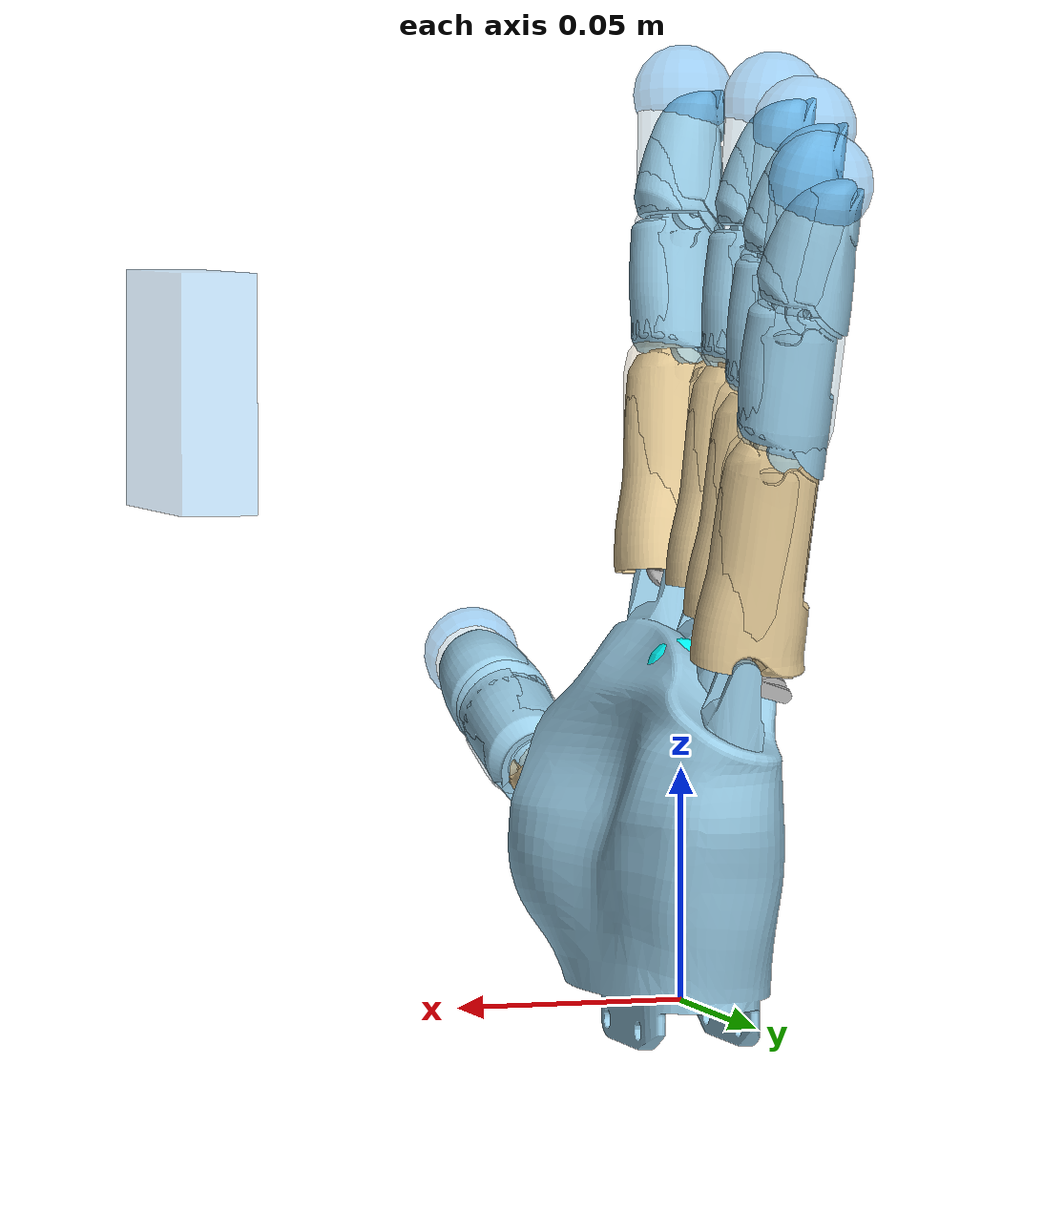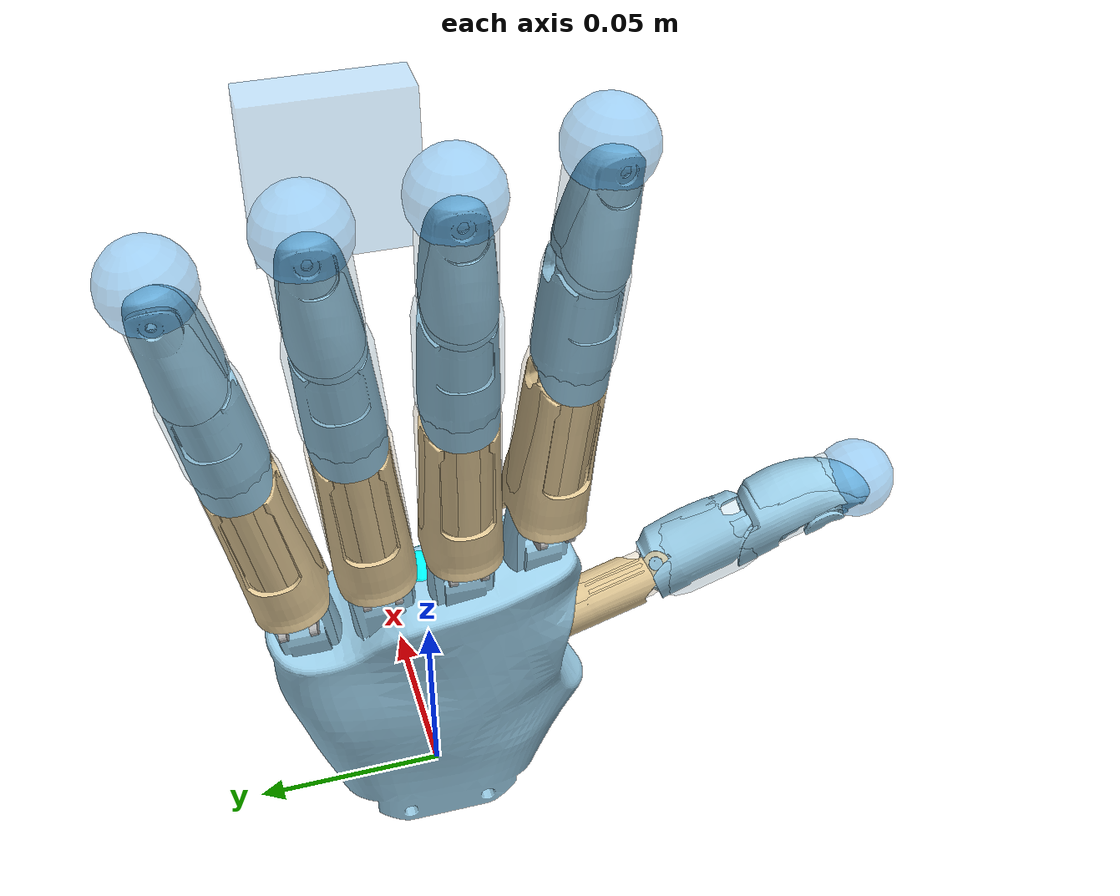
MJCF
<mujoco model="wujihand-left">
  <compiler angle="radian" meshdir="meshes/left/" />

  <default><joint armature="0.0002" damping="0.0" /></default><asset>
    <mesh name="left_palm_link" content_type="model/stl" file="left_palm_link.STL" />
    <mesh name="left_finger1_link1" content_type="model/stl" file="left_finger1_link1.STL" />
    <mesh name="left_finger1_link2" content_type="model/stl" file="left_finger1_link2.STL" />
    <mesh name="left_finger1_link3" content_type="model/stl" file="left_finger1_link3.STL" />
    <mesh name="left_finger1_link4" content_type="model/stl" file="left_finger1_link4.STL" />
    <mesh name="left_finger1_tip_link" content_type="model/stl" file="left_finger1_tip_link.STL" />
    <mesh name="left_finger2_link1" content_type="model/stl" file="left_finger2_link1.STL" />
    <mesh name="left_finger2_link2" content_type="model/stl" file="left_finger2_link2.STL" />
    <mesh name="left_finger2_link3" content_type="model/stl" file="left_finger2_link3.STL" />
    <mesh name="left_finger2_link4" content_type="model/stl" file="left_finger2_link4.STL" />
    <mesh name="left_finger2_tip_link" content_type="model/stl" file="left_finger2_tip_link.STL" />
    <mesh name="left_finger3_link1" content_type="model/stl" file="left_finger3_link1.STL" />
    <mesh name="left_finger3_link2" content_type="model/stl" file="left_finger3_link2.STL" />
    <mesh name="left_finger3_link3" content_type="model/stl" file="left_finger3_link3.STL" />
    <mesh name="left_finger3_link4" content_type="model/stl" file="left_finger3_link4.STL" />
    <mesh name="left_finger3_tip_link" content_type="model/stl" file="left_finger3_tip_link.STL" />
    <mesh name="left_finger4_link1" content_type="model/stl" file="left_finger4_link1.STL" />
    <mesh name="left_finger4_link2" content_type="model/stl" file="left_finger4_link2.STL" />
    <mesh name="left_finger4_link3" content_type="model/stl" file="left_finger4_link3.STL" />
    <mesh name="left_finger4_link4" content_type="model/stl" file="left_finger4_link4.STL" />
    <mesh name="left_finger4_tip_link" content_type="model/stl" file="left_finger4_tip_link.STL" />
    <mesh name="left_finger5_link1" content_type="model/stl" file="left_finger5_link1.STL" />
    <mesh name="left_finger5_link2" content_type="model/stl" file="left_finger5_link2.STL" />
    <mesh name="left_finger5_link3" content_type="model/stl" file="left_finger5_link3.STL" />
    <mesh name="left_finger5_link4" content_type="model/stl" file="left_finger5_link4.STL" />
    <mesh name="left_finger5_tip_link" content_type="model/stl" file="left_finger5_tip_link.STL" />
  </asset>

  <worldbody>
    <body name="left_palm_link"><inertial pos="-0.002979471431 -0.0004557176227 0.03665408641" mass="0.16914" quat="-0.01772809 0.04274722 0.09308295 -0.99458230" diaginertia="0.000140677446 9.5889647500e-05 5.8132906100e-05" /><geom type="mesh" contype="0" conaffinity="0" group="1" density="0" rgba="0.6 0.8 0.9 1" mesh="left_palm_link" />
    <site name="left_palm_tcp_site" pos="0 0 0.07" size="0.008" rgba="0 1 1 1" />
    <geom name="left_palm_grasp_pad" type="box" pos="0.108 0 0.132" size="0.008 0.025 0.025" rgba="0.25 0.65 0.95 0.30" friction="3.0 0.05 0.005" contype="0" conaffinity="0" />
    <geom type="mesh" rgba="0.6 0.8 0.9 1" mesh="left_palm_link" contype="1" conaffinity="1" />
    <body name="left_finger1_link1" pos="0.0084399 -0.020587 0.028893" quat="0.682219 0.617669 0.0805047 0.382859">
      <inertial pos="-0.00246636 0.00124336 0.00779645" quat="0.904243 0.21652 0.0443878 -0.365368" mass="0.0075" diaginertia="3.37599e-07 3.01198e-07 2.11203e-07" />
      <joint name="left_finger1_joint1" pos="0 0 0" axis="0 1 0" range="0.0475 1.6033" actuatorfrcrange="-0.4452 0.4452" armature="0.0005" />
      <geom type="mesh" contype="0" conaffinity="0" group="1" density="0" rgba="0.7 0.7 0.7 1" mesh="left_finger1_link1" />
      <geom type="mesh" rgba="0.7 0.7 0.7 1" mesh="left_finger1_link1" contype="0" conaffinity="0" />
      <body name="left_finger1_link2" pos="-0.0047549 0.0058191 0.014132" quat="0.616955 0.0855901 -0.290851 -0.726255">
        <inertial pos="0.00116592 1.46603e-05 0.015656" quat="0.815906 0.0024483 -0.00462559 0.57816" mass="0.0248" diaginertia="2.81725e-06 2.75299e-06 6.79766e-07" />
        <joint name="left_finger1_joint2" pos="0 0 0" axis="0 -1 0" range="-0.1387 0.9324" actuatorfrcrange="-0.4259 0.4259" armature="0.0005" />
        <geom type="mesh" contype="0" conaffinity="0" group="1" density="0" rgba="0.9 0.8 0.6 1" mesh="left_finger1_link2" />
        <geom name="left_finger1_link2_collision" type="capsule" size="0.0066 0.0135" pos="0 0 0.0170" rgba="0.9 0.8 0.6 0.3" contype="2" conaffinity="2" />
        <body name="left_finger1_link3" pos="0.00026671 0.0009915 0.034666" quat="0.577852 -0.0212383 -0.0150031 0.815727">
          <inertial pos="-0.0011232 1.57299e-05 0.0130566" quat="0.999951 0 0.00989566 0" mass="0.0165" diaginertia="1.4604e-06 1.42e-06 4.49604e-07" />
          <joint name="left_finger1_joint3" pos="0 0 0" axis="0 1 0" range="-0.4642 1.5623" actuatorfrcrange="-0.1888 0.1888" />
          <geom type="mesh" contype="0" conaffinity="0" group="1" density="0" rgba="0.6 0.8 0.9 1" mesh="left_finger1_link3" />
          <geom name="left_finger1_link3_collision" type="capsule" size="0.0111 0.0082" pos="0 0 0.0140" rgba="0.6 0.8 0.9 0.3" contype="1" conaffinity="1" />
          <body name="left_finger1_link4" pos="0 -0.0002 0.0295">
            <inertial pos="-0.00163886 0.000214814 0.0113475" quat="0.705316 -0.0503617 -0.0502939 0.705311" mass="0.0206" diaginertia="2.60196e-06 2.58216e-06 7.598e-07" />
            <joint name="left_finger1_joint4" pos="0 0 0" axis="0 1 0" range="-0.4699 1.5568" actuatorfrcrange="-0.1468 0.1468" />
            <geom type="mesh" contype="0" conaffinity="0" group="1" density="0" rgba="0.6 0.8 0.9 1" mesh="left_finger1_link4" />
            <geom name="left_finger1_link4_collision" type="capsule" size="0.009 0.012" pos="0 0 0.014" rgba="0.6 0.8 0.9 0.3" contype="1" conaffinity="1" />
            <geom pos="-0.00105 0.0002 0.0313" type="mesh" contype="0" conaffinity="0" group="1" density="0" rgba="0.6 0.8 0.9 1" mesh="left_finger1_tip_link" />
            <geom pos="-0.00105 0.0002 0.0313" type="mesh" rgba="0.6 0.8 0.9 1" mesh="left_finger1_tip_link" contype="0" conaffinity="0" />
            <geom name="left_finger1_pad" pos="-0.00105 0.0002 0.0313" type="sphere" size="0.011" rgba="0.25 0.65 0.95 0.45" friction="2.0 0.03 0.003" />
          </body>
        </body>
      </body>
    </body>
    <body name="left_finger2_link1" pos="-0.0058701 -0.029434 0.091917" quat="0.991689 0.0588295 -0.0292755 0.110614">
      <inertial pos="-0.0013291 -5.6587e-09 0.00031994" quat="0.92388 0 0.382683 0" mass="0.0032" diaginertia="1.1e-07 7e-08 5e-08" />
      <joint name="left_finger2_joint1" pos="0 0 0" axis="0 1 0" range="-0.1585 1.5604" actuatorfrcrange="-0.6188 0.6188" armature="0.0005" />
      <geom type="mesh" contype="0" conaffinity="0" group="1" density="0" rgba="0.7 0.7 0.7 1" mesh="left_finger2_link1" />
      <geom type="mesh" rgba="0.7 0.7 0.7 1" mesh="left_finger2_link1" contype="0" conaffinity="0" />
      <body name="left_finger2_link2" pos="0.0022 0 0.00400001" quat="0.707107 0 0 0.707107">
        <inertial pos="4.37869e-07 0.00615752 0.020911" quat="0.70703 0.0104245 0.0104245 0.70703" mass="0.033" diaginertia="6.34e-06 6.31472e-06 8.85281e-07" />
        <joint name="left_finger2_joint2" pos="0 0 0" axis="0 1 0" range="-0.37 0.37" actuatorfrcrange="-0.1822 0.1822" />
        <geom type="mesh" contype="0" conaffinity="0" group="1" density="0" rgba="0.9 0.8 0.6 1" mesh="left_finger2_link2" />
        <geom name="left_finger2_link2_collision" type="capsule" size="0.0102 0.0170" pos="0 0.003 0.0216" rgba="0.9 0.8 0.6 0.3" contype="2" conaffinity="2" />
        <body name="left_finger2_link3" pos="0 0.00475 0.0436177" quat="0.707202 0 0 -0.707012">
          <inertial pos="-0.00112187 3.27619e-05 0.0157188" quat="0.999892 0 -0.0146884 0" mass="0.0165" diaginertia="1.47088e-06 1.44e-06 4.49118e-07" />
          <joint name="left_finger2_joint3" pos="0 0 0" axis="0 1 0" range="-0.4777 1.5485" actuatorfrcrange="-0.2251 0.2251" />
          <geom type="mesh" contype="0" conaffinity="0" group="1" density="0" rgba="0.6 0.8 0.9 1" mesh="left_finger2_link3" />
          <geom name="left_finger2_link3_collision" type="capsule" size="0.0102 0.0109" pos="0 0 0.0136" rgba="0.6 0.8 0.9 0.3" contype="1" conaffinity="1" />
          <body name="left_finger2_link4" pos="0 -0.0002 0.0295">
            <inertial pos="-0.000802981 -1.72016e-05 0.00761201" quat="0.998028 0.01288 -0.055568 0.0261826" mass="0.01718" diaginertia="1.55462e-06 1.45763e-06 4.20116e-07" />
            <joint name="left_finger2_joint4" pos="0 0 0" axis="0 1 0" range="-0.4683 1.5753" actuatorfrcrange="-0.217 0.217" />
            <geom type="mesh" contype="0" conaffinity="0" group="1" density="0" rgba="0.6 0.8 0.9 1" mesh="left_finger2_link4" />
            <geom name="left_finger2_link4_collision" type="capsule" size="0.009 0.011" pos="0 0 0.012" rgba="0.6 0.8 0.9 0.3" contype="1" conaffinity="1" />
            <geom pos="-0.0010521 0.000210869 0.0267" type="mesh" contype="0" conaffinity="0" group="1" density="0" rgba="0.6 0.8 0.9 1" mesh="left_finger2_tip_link" />
            <geom pos="-0.0010521 0.000210869 0.0267" type="mesh" rgba="0.6 0.8 0.9 1" mesh="left_finger2_tip_link" contype="0" conaffinity="0" />
            <geom name="left_finger2_pad" pos="-0.0010521 0.000210869 0.0267" type="sphere" size="0.011" rgba="0.25 0.65 0.95 0.45" friction="2.0 0.03 0.003" />
          </body>
        </body>
      </body>
    </body>
    <body name="left_finger3_link1" pos="-0.01046 -0.0074615 0.089544" quat="0.999048 1.26888e-05 -0.0436192 -0.000290547">
      <inertial pos="-0.0013291 -1.4994e-08 0.0003199" quat="0.92388 0 0.382683 0" mass="0.0032" diaginertia="1.1e-07 7e-08 5e-08" />
      <joint name="left_finger3_joint1" pos="0 0 0" axis="0 1 0" range="-0.1644 1.5516" actuatorfrcrange="-0.6494 0.6494" armature="0.0005" />
      <geom type="mesh" contype="0" conaffinity="0" group="1" density="0" rgba="0.7 0.7 0.7 1" mesh="left_finger3_link1" />
      <geom type="mesh" rgba="0.7 0.7 0.7 1" mesh="left_finger3_link1" contype="0" conaffinity="0" />
      <body name="left_finger3_link2" pos="0.0022 0 0.00400001" quat="0.707107 0 0 0.707107">
        <inertial pos="4.38062e-07 0.00615753 0.020911" quat="0.70703 0.0104245 0.0104245 0.70703" mass="0.033" diaginertia="6.34e-06 6.31472e-06 8.85281e-07" />
        <joint name="left_finger3_joint2" pos="0 0 0" axis="0 1 0" range="-0.37 0.37" actuatorfrcrange="-0.1827 0.1827" />
        <geom type="mesh" contype="0" conaffinity="0" group="1" density="0" rgba="0.9 0.8 0.6 1" mesh="left_finger3_link2" />
        <geom name="left_finger3_link2_collision" type="capsule" size="0.0102 0.0170" pos="0 0.003 0.0216" rgba="0.9 0.8 0.6 0.3" contype="2" conaffinity="2" />
        <body name="left_finger3_link3" pos="0 0.00475 0.0436177" quat="0.707202 0 0 -0.707012">
          <inertial pos="-0.00112187 3.27807e-05 0.0157188" quat="0.999892 0 -0.0146884 0" mass="0.0165" diaginertia="1.47088e-06 1.44e-06 4.49118e-07" />
          <joint name="left_finger3_joint3" pos="0 0 0" axis="0 1 0" range="-0.4739 1.5512" actuatorfrcrange="-0.2078 0.2078" />
          <site name="left_guard_knuckle_site" pos="0 0 0.002" size="0.004" rgba="0.75 0.1 0.9 0" />
          <geom type="mesh" contype="0" conaffinity="0" group="1" density="0" rgba="0.6 0.8 0.9 1" mesh="left_finger3_link3" />
          <geom name="left_finger3_link3_collision" type="capsule" size="0.0102 0.0109" pos="0 0 0.0136" rgba="0.6 0.8 0.9 0.3" contype="1" conaffinity="1" />
          <body name="left_finger3_link4" pos="0 -0.0002 0.0295">
            <inertial pos="-0.000801449 -1.76824e-05 0.00761202" quat="0.998029 0.0129107 -0.0554603 0.026365" mass="0.01718" diaginertia="1.55458e-06 1.45766e-06 4.20206e-07" />
            <joint name="left_finger3_joint4" pos="0 0 0" axis="0 1 0" range="-0.4684 1.5745" actuatorfrcrange="-0.2018 0.2018" />
            <geom type="mesh" contype="0" conaffinity="0" group="1" density="0" rgba="0.6 0.8 0.9 1" mesh="left_finger3_link4" />
            <geom name="left_finger3_link4_collision" type="capsule" size="0.009 0.011" pos="0 0 0.012" rgba="0.6 0.8 0.9 0.3" contype="1" conaffinity="1" />
            <geom pos="-0.0010504 0.000202672 0.0267" type="mesh" contype="0" conaffinity="0" group="1" density="0" rgba="0.6 0.8 0.9 1" mesh="left_finger3_tip_link" />
            <geom pos="-0.0010504 0.000202672 0.0267" type="mesh" rgba="0.6 0.8 0.9 1" mesh="left_finger3_tip_link" contype="0" conaffinity="0" />
            <geom name="left_finger3_pad" pos="-0.0010504 0.000202672 0.0267" type="sphere" size="0.011" rgba="0.25 0.65 0.95 0.45" friction="2.0 0.03 0.003" />
          </body>
        </body>
      </body>
    </body>
    <body name="left_finger4_link1" pos="-0.0076649 0.013712 0.084429" quat="0.997789 -0.0461019 -0.0405884 -0.0254002">
      <inertial pos="-0.0013291 -9.6993e-09 0.00031986" quat="0.92388 0 0.382683 0" mass="0.0032" diaginertia="1.1e-07 7e-08 5e-08" />
      <joint name="left_finger4_joint1" pos="0 0 0" axis="0 1 0" range="-0.1554 1.5585" actuatorfrcrange="-0.6389 0.6389" armature="0.0005" />
      <geom type="mesh" contype="0" conaffinity="0" group="1" density="0" rgba="0.7 0.7 0.7 1" mesh="left_finger4_link1" />
      <geom type="mesh" rgba="0.7 0.7 0.7 1" mesh="left_finger4_link1" contype="0" conaffinity="0" />
      <body name="left_finger4_link2" pos="0.0022 0 0.00400001" quat="0.707107 0 0 0.707107">
        <inertial pos="4.36896e-07 0.00615754 0.020911" quat="0.70703 0.0104245 0.0104245 0.70703" mass="0.033" diaginertia="6.34e-06 6.31472e-06 8.85281e-07" />
        <joint name="left_finger4_joint2" pos="0 0 0" axis="0 1 0" range="-0.37 0.37" actuatorfrcrange="-0.1832 0.1832" />
        <geom type="mesh" contype="0" conaffinity="0" group="1" density="0" rgba="0.9 0.8 0.6 1" mesh="left_finger4_link2" />
        <geom name="left_finger4_link2_collision" type="capsule" size="0.0102 0.0170" pos="0 0.003 0.0217" rgba="0.9 0.8 0.6 0.3" contype="2" conaffinity="2" />
        <body name="left_finger4_link3" pos="0 0.00475 0.0436177" quat="0.707202 0 0 -0.707012">
          <inertial pos="-0.00112188 3.27942e-05 0.0157188" quat="0.999892 0 -0.0146884 0" mass="0.0165" diaginertia="1.47088e-06 1.44e-06 4.49118e-07" />
          <joint name="left_finger4_joint3" pos="0 0 0" axis="0 1 0" range="-0.4765 1.5487" actuatorfrcrange="-0.2249 0.2249" />
          <geom type="mesh" contype="0" conaffinity="0" group="1" density="0" rgba="0.6 0.8 0.9 1" mesh="left_finger4_link3" />
          <geom name="left_finger4_link3_collision" type="capsule" size="0.0102 0.0109" pos="0 0 0.0137" rgba="0.6 0.8 0.9 0.3" contype="1" conaffinity="1" />
          <body name="left_finger4_link4" pos="0 -0.0002 0.0295">
            <inertial pos="-0.000801408 -1.86048e-05 0.00761203" quat="0.998025 0.012979 -0.0554598 0.0264871" mass="0.01718" diaginertia="1.55462e-06 1.45766e-06 4.20231e-07" />
            <joint name="left_finger4_joint4" pos="0 0 0" axis="0 1 0" range="-0.4777 1.5634" actuatorfrcrange="-0.2044 0.2044" />
            <geom type="mesh" contype="0" conaffinity="0" group="1" density="0" rgba="0.6 0.8 0.9 1" mesh="left_finger4_link4" />
            <geom name="left_finger4_link4_collision" type="capsule" size="0.009 0.011" pos="0 0 0.012" rgba="0.6 0.8 0.9 0.3" contype="1" conaffinity="1" />
            <geom pos="-0.00104998 0.000202557 0.0267" type="mesh" contype="0" conaffinity="0" group="1" density="0" rgba="0.6 0.8 0.9 1" mesh="left_finger4_tip_link" />
            <geom pos="-0.00104998 0.000202557 0.0267" type="mesh" rgba="0.6 0.8 0.9 1" mesh="left_finger4_tip_link" contype="0" conaffinity="0" />
            <geom name="left_finger4_pad" pos="-0.00104998 0.000202557 0.0267" type="sphere" size="0.011" rgba="0.25 0.65 0.95 0.45" friction="2.0 0.03 0.003" />
          </body>
        </body>
      </body>
    </body>
    <body name="left_finger5_link1" pos="-0.00226865 0.0340011 0.0742813" quat="0.990869 -0.0993173 -0.0383255 -0.0827362">
      <inertial pos="-0.00132909 -2.35275e-08 0.000319845" quat="0.92388 0 0.382683 0" mass="0.0032" diaginertia="1.1e-07 7e-08 5e-08" />
      <joint name="left_finger5_joint1" pos="0 0 0" axis="0 1 0" range="-0.1626 1.5585" actuatorfrcrange="-0.6441 0.6441" armature="0.0005" />
      <geom type="mesh" contype="0" conaffinity="0" group="1" density="0" rgba="0.7 0.7 0.7 1" mesh="left_finger5_link1" />
      <geom type="mesh" rgba="0.7 0.7 0.7 1" mesh="left_finger5_link1" contype="0" conaffinity="0" />
      <body name="left_finger5_link2" pos="0.0022 0 0.00400001" quat="0.707107 0 0 0.707107">
        <inertial pos="4.36753e-07 0.00615753 0.020911" quat="0.70703 0.0104245 0.0104245 0.70703" mass="0.033" diaginertia="6.34e-06 6.31472e-06 8.85281e-07" />
        <joint name="left_finger5_joint2" pos="0 0 0" axis="0 1 0" range="-0.37 0.37" actuatorfrcrange="-0.1798 0.1798" />
        <geom type="mesh" contype="0" conaffinity="0" group="1" density="0" rgba="0.9 0.8 0.6 1" mesh="left_finger5_link2" />
        <geom name="left_finger5_link2_collision" type="capsule" size="0.0102 0.0169" pos="0 0.003 0.0218" rgba="0.9 0.8 0.6 0.3" contype="2" conaffinity="2" />
        <body name="left_finger5_link3" pos="0 0.00475 0.0436177" quat="0.707202 0 0 -0.707012">
          <inertial pos="-0.00112188 3.28067e-05 0.0157188" quat="0.999892 0 -0.0146884 0" mass="0.0165" diaginertia="1.47088e-06 1.44e-06 4.49118e-07" />
          <joint name="left_finger5_joint3" pos="0 0 0" axis="0 1 0" range="-0.4768 1.549" actuatorfrcrange="-0.2384 0.2384" />
          <geom type="mesh" contype="0" conaffinity="0" group="1" density="0" rgba="0.6 0.8 0.9 1" mesh="left_finger5_link3" />
          <geom name="left_finger5_link3_collision" type="capsule" size="0.0102 0.0099" pos="0 0 0.0147" rgba="0.6 0.8 0.9 0.3" contype="1" conaffinity="1" />
          <body name="left_finger5_link4" pos="0 -0.0002 0.0295">
            <inertial pos="-0.000801156 -1.7469e-05 0.00761203" quat="0.998031 0.0128934 -0.0554374 0.0263611" mass="0.01718" diaginertia="1.55457e-06 1.45766e-06 4.20216e-07" />
            <joint name="left_finger5_joint4" pos="0 0 0" axis="0 1 0" range="-0.4683 1.5735" actuatorfrcrange="-0.1866 0.1866" />
            <geom type="mesh" contype="0" conaffinity="0" group="1" density="0" rgba="0.6 0.8 0.9 1" mesh="left_finger5_link4" />
            <geom name="left_finger5_link4_collision" type="capsule" size="0.009 0.012" pos="0 0 0.013" rgba="0.6 0.8 0.9 0.3" contype="1" conaffinity="1" />
            <geom pos="-0.00105041 0.000201047 0.0267" type="mesh" contype="0" conaffinity="0" group="1" density="0" rgba="0.6 0.8 0.9 1" mesh="left_finger5_tip_link" />
            <geom pos="-0.00105041 0.000201047 0.0267" type="mesh" rgba="0.6 0.8 0.9 1" mesh="left_finger5_tip_link" contype="0" conaffinity="0" />
            <geom name="left_finger5_pad" pos="-0.00105041 0.000201047 0.0267" type="sphere" size="0.011" rgba="0.25 0.65 0.95 0.45" friction="2.0 0.03 0.003" />
          </body>
        </body>
      </body>
    </body>
  </body></worldbody>
  <actuator>
    <position name="left_finger1_joint1_actuator" joint="left_finger1_joint1" kp="0.40844710645048043" kv="0.020882010257063675" ctrlrange="0.0475 1.603" forcerange="-0.4452 0.4452" />
    <position name="left_finger1_joint2_actuator" joint="left_finger1_joint2" kp="0.6858601063643346" kv="0.030610939996373314" ctrlrange="-0.1387 0.9324" forcerange="-0.4259 0.4259" />
    <position name="left_finger1_joint3_actuator" joint="left_finger1_joint3" kp="0.2391112196099482" kv="0.010181475050560962" ctrlrange="-0.4642 1.562" forcerange="-0.1888 0.1888" />
    <position name="left_finger1_joint4_actuator" joint="left_finger1_joint4" kp="0.20736128319711747" kv="0.00909698844675045" ctrlrange="-0.4699 1.5568" forcerange="-0.1468 0.1468" />
    <position name="left_finger2_joint1_actuator" joint="left_finger2_joint1" kp="0.37352218155860073" kv="0.01882274330029718" ctrlrange="-0.1585 1.56" forcerange="-0.6188 0.6188" />
    <position name="left_finger2_joint2_actuator" joint="left_finger2_joint2" kp="0.45592448909027794" kv="0.019798167597016643" ctrlrange="-0.37 0.37" forcerange="-0.1822 0.1822" />
    <position name="left_finger2_joint3_actuator" joint="left_finger2_joint3" kp="0.24368366649522863" kv="0.010477031953162727" ctrlrange="-0.4777 1.548" forcerange="-0.2251 0.2251" />
    <position name="left_finger2_joint4_actuator" joint="left_finger2_joint4" kp="0.18026971340925335" kv="0.008240212147903584" ctrlrange="-0.4683 1.575" forcerange="-0.217 0.217" />
    <position name="left_finger3_joint1_actuator" joint="left_finger3_joint1" kp="0.3687093483646485" kv="0.01848622487024593" ctrlrange="-0.1644 1.5516" forcerange="-0.6494 0.6494" />
    <position name="left_finger3_joint2_actuator" joint="left_finger3_joint2" kp="0.4164253443634641" kv="0.018032947229953678" ctrlrange="-0.37 0.37" forcerange="-0.1827 0.1827" />
    <position name="left_finger3_joint3_actuator" joint="left_finger3_joint3" kp="0.22218607502059182" kv="0.009592200014076666" ctrlrange="-0.4739 1.551" forcerange="-0.2078 0.2078" />
    <position name="left_finger3_joint4_actuator" joint="left_finger3_joint4" kp="0.19427606072023446" kv="0.009152994605972402" ctrlrange="-0.4684 1.5745" forcerange="-0.2018 0.2018" />
    <position name="left_finger4_joint1_actuator" joint="left_finger4_joint1" kp="0.35718151495111794" kv="0.018376606800780005" ctrlrange="-0.1554 1.558" forcerange="-0.6389 0.6389" />
    <position name="left_finger4_joint2_actuator" joint="left_finger4_joint2" kp="0.42977315313086895" kv="0.01867700966212433" ctrlrange="-0.37 0.37" forcerange="-0.1832 0.1832" />
    <position name="left_finger4_joint3_actuator" joint="left_finger4_joint3" kp="0.24930151196247122" kv="0.01059512121009555" ctrlrange="-0.4765 1.5487" forcerange="-0.2249 0.2249" />
    <position name="left_finger4_joint4_actuator" joint="left_finger4_joint4" kp="0.2285032688178066" kv="0.009917602877441107" ctrlrange="-0.4777 1.563" forcerange="-0.2044 0.2044" />
    <position name="left_finger5_joint1_actuator" joint="left_finger5_joint1" kp="0.3655325975433942" kv="0.018616960278988272" ctrlrange="-0.1626 1.558" forcerange="-0.6441 0.6441" />
    <position name="left_finger5_joint2_actuator" joint="left_finger5_joint2" kp="0.41393113081120425" kv="0.018732177029667153" ctrlrange="-0.37 0.37" forcerange="-0.1798 0.1798" />
    <position name="left_finger5_joint3_actuator" joint="left_finger5_joint3" kp="0.22729367621965954" kv="0.00951005441616486" ctrlrange="-0.4768 1.549" forcerange="-0.2384 0.2384" />
    <position name="left_finger5_joint4_actuator" joint="left_finger5_joint4" kp="0.1964723550341816" kv="0.009017295241756363" ctrlrange="-0.4683 1.573" forcerange="-0.1866 0.1866" />
  </actuator>
</mujoco>
